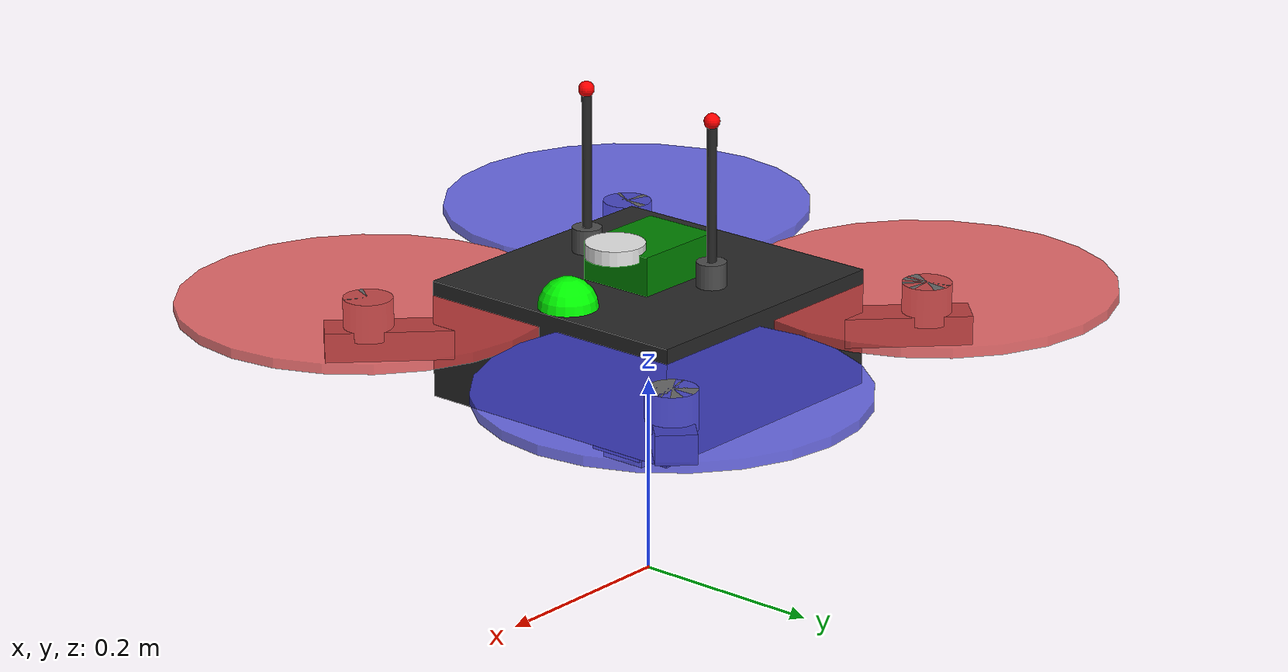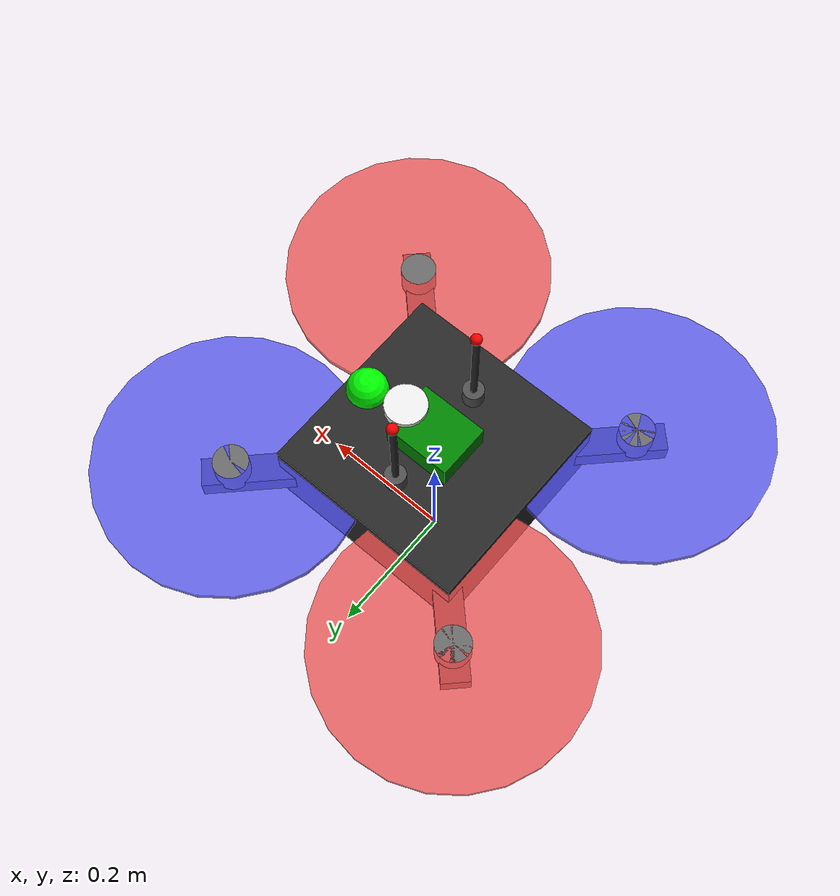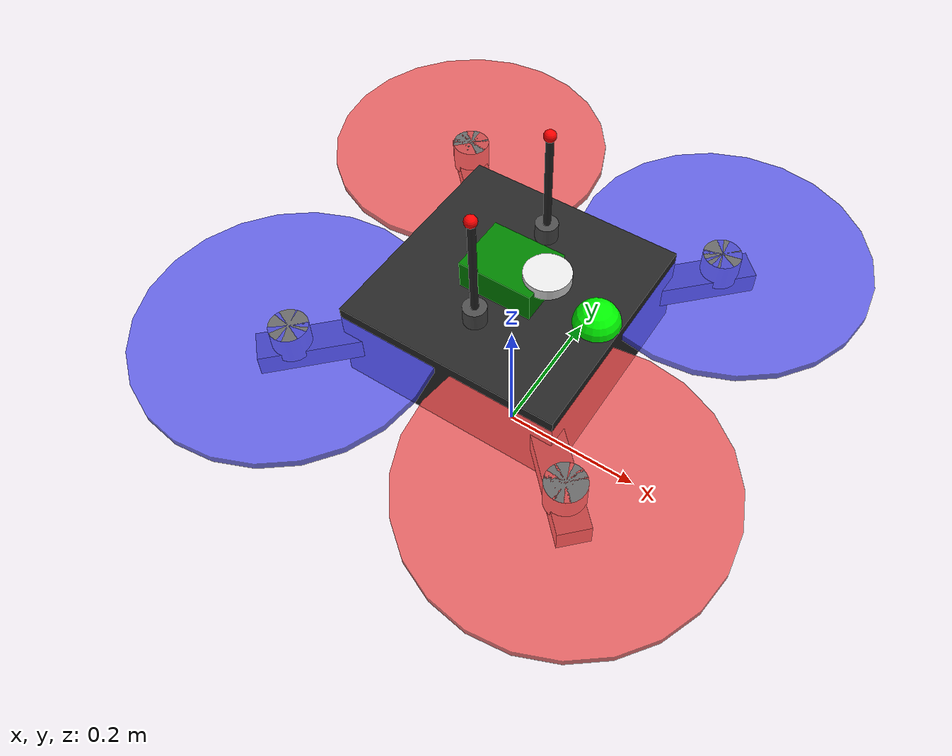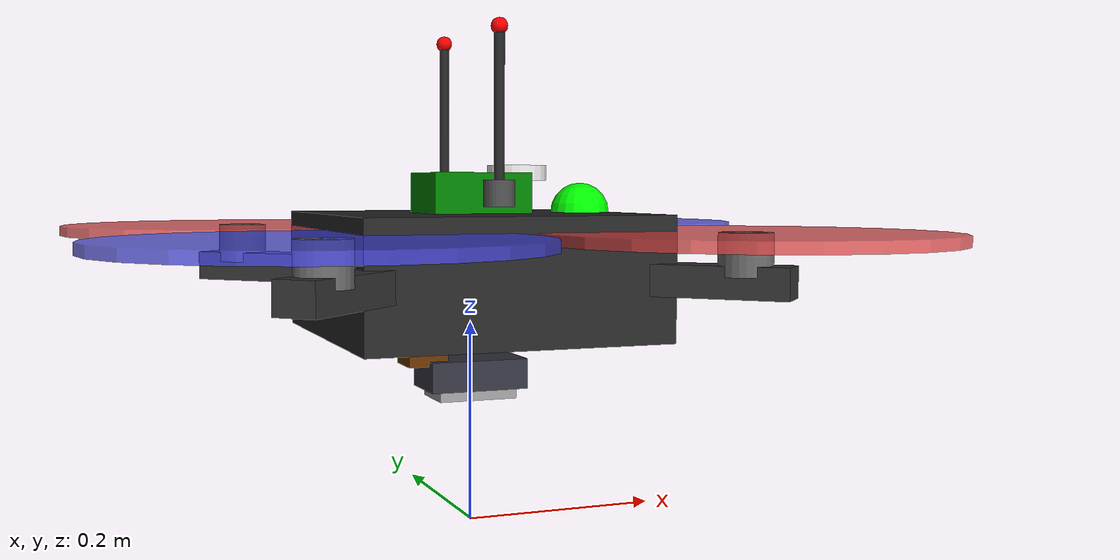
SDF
<?xml version="1.0" ?>
<sdf version="1.9">
  <model name="f11_comms_relay">
    <pose>0 0 0.25 0 0 0</pose>

    <!-- F-11 Base Link (Main Body) -->
    <link name="base_link">
      <inertial>
        <!-- Total mass: 4.5 kg base + 0.5 kg payload = 5.0 kg -->
        <mass>5.0</mass>
        <inertia>
          <ixx>0.095</ixx>
          <ixy>0</ixy>
          <ixz>0</ixz>
          <iyy>0.095</iyy>
          <iyz>0</iyz>
          <izz>0.155</izz>
        </inertia>
      </inertial>

      <!-- Main body visual - central frame -->
      <visual name="body_visual">
        <geometry>
          <box>
            <size>0.30 0.30 0.12</size>
          </box>
        </geometry>
        <material>
          <ambient>0.1 0.1 0.1 1</ambient>
          <diffuse>0.15 0.15 0.15 1</diffuse>
          <specular>0.3 0.3 0.3 1</specular>
        </material>
      </visual>

      <!-- Battery bay visual -->
      <visual name="battery_visual">
        <pose>0 0 -0.04 0 0 0</pose>
        <geometry>
          <box>
            <size>0.18 0.12 0.06</size>
          </box>
        </geometry>
        <material>
          <ambient>0.2 0.2 0.25 1</ambient>
          <diffuse>0.25 0.25 0.3 1</diffuse>
        </material>
      </visual>

      <!-- Jetson Orin NX housing visual -->
      <visual name="compute_visual">
        <pose>0 0 0.08 0 0 0</pose>
        <geometry>
          <box>
            <size>0.10 0.08 0.04</size>
          </box>
        </geometry>
        <material>
          <ambient>0.0 0.4 0.0 1</ambient>
          <diffuse>0.0 0.5 0.0 1</diffuse>
        </material>
      </visual>

      <!-- Front marker for orientation (green) -->
      <visual name="front_marker">
        <pose>0.12 0 0.06 0 0 0</pose>
        <geometry>
          <sphere>
            <radius>0.03</radius>
          </sphere>
        </geometry>
        <material>
          <ambient>0 1 0 1</ambient>
          <diffuse>0 1 0 1</diffuse>
        </material>
      </visual>

      <!-- Arms visual representation -->
      <visual name="arm_fr_visual">
        <pose>0.1375 -0.1375 0 0 0 -0.785398</pose>
        <geometry>
          <box>
            <size>0.25 0.04 0.03</size>
          </box>
        </geometry>
        <material>
          <ambient>0.15 0.15 0.15 1</ambient>
          <diffuse>0.2 0.2 0.2 1</diffuse>
        </material>
      </visual>

      <visual name="arm_fl_visual">
        <pose>0.1375 0.1375 0 0 0 0.785398</pose>
        <geometry>
          <box>
            <size>0.25 0.04 0.03</size>
          </box>
        </geometry>
        <material>
          <ambient>0.15 0.15 0.15 1</ambient>
          <diffuse>0.2 0.2 0.2 1</diffuse>
        </material>
      </visual>

      <visual name="arm_br_visual">
        <pose>-0.1375 -0.1375 0 0 0 0.785398</pose>
        <geometry>
          <box>
            <size>0.25 0.04 0.03</size>
          </box>
        </geometry>
        <material>
          <ambient>0.15 0.15 0.15 1</ambient>
          <diffuse>0.2 0.2 0.2 1</diffuse>
        </material>
      </visual>

      <visual name="arm_bl_visual">
        <pose>-0.1375 0.1375 0 0 0 -0.785398</pose>
        <geometry>
          <box>
            <size>0.25 0.04 0.03</size>
          </box>
        </geometry>
        <material>
          <ambient>0.15 0.15 0.15 1</ambient>
          <diffuse>0.2 0.2 0.2 1</diffuse>
        </material>
      </visual>

      <collision name="body_collision">
        <geometry>
          <box>
            <size>0.55 0.55 0.15</size>
          </box>
        </geometry>
      </collision>
    </link>

    <!-- Rotor 0 (Front Right - CW) -->
    <link name="rotor_0">
      <pose>0.195 -0.195 0.04 0 0 0</pose>
      <inertial>
        <mass>0.025</mass>
        <inertia>
          <ixx>1.0e-05</ixx>
          <ixy>0</ixy>
          <ixz>0</ixz>
          <iyy>5.0e-04</iyy>
          <iyz>0</iyz>
          <izz>5.0e-04</izz>
        </inertia>
      </inertial>
      <visual name="rotor_visual">
        <geometry>
          <cylinder>
            <radius>0.19</radius>
            <length>0.01</length>
          </cylinder>
        </geometry>
        <material>
          <ambient>0.8 0.2 0.2 0.8</ambient>
          <diffuse>0.9 0.3 0.3 0.8</diffuse>
        </material>
      </visual>
      <visual name="motor_visual">
        <pose>0 0 -0.015 0 0 0</pose>
        <geometry>
          <cylinder>
            <radius>0.025</radius>
            <length>0.04</length>
          </cylinder>
        </geometry>
        <material>
          <ambient>0.3 0.3 0.3 1</ambient>
          <diffuse>0.4 0.4 0.4 1</diffuse>
        </material>
      </visual>
    </link>

    <!-- Rotor 1 (Back Left - CW) -->
    <link name="rotor_1">
      <pose>-0.195 0.195 0.04 0 0 0</pose>
      <inertial>
        <mass>0.025</mass>
        <inertia>
          <ixx>1.0e-05</ixx>
          <ixy>0</ixy>
          <ixz>0</ixz>
          <iyy>5.0e-04</iyy>
          <iyz>0</iyz>
          <izz>5.0e-04</izz>
        </inertia>
      </inertial>
      <visual name="rotor_visual">
        <geometry>
          <cylinder>
            <radius>0.19</radius>
            <length>0.01</length>
          </cylinder>
        </geometry>
        <material>
          <ambient>0.8 0.2 0.2 0.8</ambient>
          <diffuse>0.9 0.3 0.3 0.8</diffuse>
        </material>
      </visual>
      <visual name="motor_visual">
        <pose>0 0 -0.015 0 0 0</pose>
        <geometry>
          <cylinder>
            <radius>0.025</radius>
            <length>0.04</length>
          </cylinder>
        </geometry>
        <material>
          <ambient>0.3 0.3 0.3 1</ambient>
          <diffuse>0.4 0.4 0.4 1</diffuse>
        </material>
      </visual>
    </link>

    <!-- Rotor 2 (Front Left - CCW) -->
    <link name="rotor_2">
      <pose>0.195 0.195 0.04 0 0 0</pose>
      <inertial>
        <mass>0.025</mass>
        <inertia>
          <ixx>1.0e-05</ixx>
          <ixy>0</ixy>
          <ixz>0</ixz>
          <iyy>5.0e-04</iyy>
          <iyz>0</iyz>
          <izz>5.0e-04</izz>
        </inertia>
      </inertial>
      <visual name="rotor_visual">
        <geometry>
          <cylinder>
            <radius>0.19</radius>
            <length>0.01</length>
          </cylinder>
        </geometry>
        <material>
          <ambient>0.2 0.2 0.8 0.8</ambient>
          <diffuse>0.3 0.3 0.9 0.8</diffuse>
        </material>
      </visual>
      <visual name="motor_visual">
        <pose>0 0 -0.015 0 0 0</pose>
        <geometry>
          <cylinder>
            <radius>0.025</radius>
            <length>0.04</length>
          </cylinder>
        </geometry>
        <material>
          <ambient>0.3 0.3 0.3 1</ambient>
          <diffuse>0.4 0.4 0.4 1</diffuse>
        </material>
      </visual>
    </link>

    <!-- Rotor 3 (Back Right - CCW) -->
    <link name="rotor_3">
      <pose>-0.195 -0.195 0.04 0 0 0</pose>
      <inertial>
        <mass>0.025</mass>
        <inertia>
          <ixx>1.0e-05</ixx>
          <ixy>0</ixy>
          <ixz>0</ixz>
          <iyy>5.0e-04</iyy>
          <iyz>0</iyz>
          <izz>5.0e-04</izz>
        </inertia>
      </inertial>
      <visual name="rotor_visual">
        <geometry>
          <cylinder>
            <radius>0.19</radius>
            <length>0.01</length>
          </cylinder>
        </geometry>
        <material>
          <ambient>0.2 0.2 0.8 0.8</ambient>
          <diffuse>0.3 0.3 0.9 0.8</diffuse>
        </material>
      </visual>
      <visual name="motor_visual">
        <pose>0 0 -0.015 0 0 0</pose>
        <geometry>
          <cylinder>
            <radius>0.025</radius>
            <length>0.04</length>
          </cylinder>
        </geometry>
        <material>
          <ambient>0.3 0.3 0.3 1</ambient>
          <diffuse>0.4 0.4 0.4 1</diffuse>
        </material>
      </visual>
    </link>

    <!-- SDR Transceiver Housing Link -->
    <link name="sdr_link">
      <pose>0 0 -0.10 0 0 0</pose>
      <inertial>
        <mass>0.25</mass>
        <inertia>
          <ixx>0.0004</ixx>
          <ixy>0</ixy>
          <ixz>0</ixz>
          <iyy>0.0004</iyy>
          <iyz>0</iyz>
          <izz>0.0003</izz>
        </inertia>
      </inertial>
      <!-- SDR housing -->
      <visual name="sdr_housing_visual">
        <geometry>
          <box>
            <size>0.10 0.06 0.03</size>
          </box>
        </geometry>
        <material>
          <ambient>0.15 0.15 0.2 1</ambient>
          <diffuse>0.2 0.2 0.25 1</diffuse>
        </material>
      </visual>
      <!-- Heat sink fins -->
      <visual name="heatsink_visual">
        <pose>0 0 -0.02 0 0 0</pose>
        <geometry>
          <box>
            <size>0.08 0.05 0.01</size>
          </box>
        </geometry>
        <material>
          <ambient>0.5 0.5 0.5 1</ambient>
          <diffuse>0.6 0.6 0.6 1</diffuse>
        </material>
      </visual>
    </link>

    <!-- Antenna 1 (Port side) Link -->
    <link name="antenna_1_link">
      <pose>0 0.08 0.08 0 0 0</pose>
      <inertial>
        <mass>0.05</mass>
        <inertia>
          <ixx>0.0002</ixx>
          <ixy>0</ixy>
          <ixz>0</ixz>
          <iyy>1e-05</iyy>
          <iyz>0</iyz>
          <izz>0.0002</izz>
        </inertia>
      </inertial>
      <!-- Antenna base -->
      <visual name="antenna_base_visual">
        <pose>0 0 0 0 0 0</pose>
        <geometry>
          <cylinder>
            <radius>0.015</radius>
            <length>0.025</length>
          </cylinder>
        </geometry>
        <material>
          <ambient>0.2 0.2 0.2 1</ambient>
          <diffuse>0.3 0.3 0.3 1</diffuse>
        </material>
      </visual>
      <!-- Antenna mast -->
      <visual name="antenna_mast_visual">
        <pose>0 0 0.08 0 0 0</pose>
        <geometry>
          <cylinder>
            <radius>0.005</radius>
            <length>0.14</length>
          </cylinder>
        </geometry>
        <material>
          <ambient>0.1 0.1 0.1 1</ambient>
          <diffuse>0.15 0.15 0.15 1</diffuse>
        </material>
      </visual>
      <!-- Antenna tip -->
      <visual name="antenna_tip_visual">
        <pose>0 0 0.155 0 0 0</pose>
        <geometry>
          <sphere>
            <radius>0.008</radius>
          </sphere>
        </geometry>
        <material>
          <ambient>0.8 0.0 0.0 1</ambient>
          <diffuse>1.0 0.0 0.0 1</diffuse>
        </material>
      </visual>
    </link>

    <!-- Antenna 2 (Starboard side) Link -->
    <link name="antenna_2_link">
      <pose>0 -0.08 0.08 0 0 0</pose>
      <inertial>
        <mass>0.05</mass>
        <inertia>
          <ixx>0.0002</ixx>
          <ixy>0</ixy>
          <ixz>0</ixz>
          <iyy>1e-05</iyy>
          <iyz>0</iyz>
          <izz>0.0002</izz>
        </inertia>
      </inertial>
      <!-- Antenna base -->
      <visual name="antenna_base_visual">
        <pose>0 0 0 0 0 0</pose>
        <geometry>
          <cylinder>
            <radius>0.015</radius>
            <length>0.025</length>
          </cylinder>
        </geometry>
        <material>
          <ambient>0.2 0.2 0.2 1</ambient>
          <diffuse>0.3 0.3 0.3 1</diffuse>
        </material>
      </visual>
      <!-- Antenna mast -->
      <visual name="antenna_mast_visual">
        <pose>0 0 0.08 0 0 0</pose>
        <geometry>
          <cylinder>
            <radius>0.005</radius>
            <length>0.14</length>
          </cylinder>
        </geometry>
        <material>
          <ambient>0.1 0.1 0.1 1</ambient>
          <diffuse>0.15 0.15 0.15 1</diffuse>
        </material>
      </visual>
      <!-- Antenna tip -->
      <visual name="antenna_tip_visual">
        <pose>0 0 0.155 0 0 0</pose>
        <geometry>
          <sphere>
            <radius>0.008</radius>
          </sphere>
        </geometry>
        <material>
          <ambient>0.8 0.0 0.0 1</ambient>
          <diffuse>1.0 0.0 0.0 1</diffuse>
        </material>
      </visual>
    </link>

    <!-- Power management module -->
    <link name="power_module_link">
      <pose>-0.05 0 -0.08 0 0 0</pose>
      <inertial>
        <mass>0.1</mass>
        <inertia>
          <ixx>5e-05</ixx>
          <ixy>0</ixy>
          <ixz>0</ixz>
          <iyy>5e-05</iyy>
          <iyz>0</iyz>
          <izz>5e-05</izz>
        </inertia>
      </inertial>
      <visual name="power_visual">
        <geometry>
          <box>
            <size>0.04 0.04 0.02</size>
          </box>
        </geometry>
        <material>
          <ambient>0.3 0.15 0.0 1</ambient>
          <diffuse>0.4 0.2 0.0 1</diffuse>
        </material>
      </visual>
    </link>

    <!-- Rotor joints -->
    <joint name="rotor_0_joint" type="revolute">
      <parent>base_link</parent>
      <child>rotor_0</child>
      <axis>
        <xyz>0 0 1</xyz>
        <limit>
          <lower>-1e16</lower>
          <upper>1e16</upper>
        </limit>
        <dynamics>
          <damping>0.004</damping>
        </dynamics>
      </axis>
    </joint>

    <joint name="rotor_1_joint" type="revolute">
      <parent>base_link</parent>
      <child>rotor_1</child>
      <axis>
        <xyz>0 0 1</xyz>
        <limit>
          <lower>-1e16</lower>
          <upper>1e16</upper>
        </limit>
        <dynamics>
          <damping>0.004</damping>
        </dynamics>
      </axis>
    </joint>

    <joint name="rotor_2_joint" type="revolute">
      <parent>base_link</parent>
      <child>rotor_2</child>
      <axis>
        <xyz>0 0 1</xyz>
        <limit>
          <lower>-1e16</lower>
          <upper>1e16</upper>
        </limit>
        <dynamics>
          <damping>0.004</damping>
        </dynamics>
      </axis>
    </joint>

    <joint name="rotor_3_joint" type="revolute">
      <parent>base_link</parent>
      <child>rotor_3</child>
      <axis>
        <xyz>0 0 1</xyz>
        <limit>
          <lower>-1e16</lower>
          <upper>1e16</upper>
        </limit>
        <dynamics>
          <damping>0.004</damping>
        </dynamics>
      </axis>
    </joint>

    <!-- Payload joints -->
    <joint name="sdr_joint" type="fixed">
      <parent>base_link</parent>
      <child>sdr_link</child>
    </joint>

    <joint name="antenna_1_joint" type="fixed">
      <parent>base_link</parent>
      <child>antenna_1_link</child>
    </joint>

    <joint name="antenna_2_joint" type="fixed">
      <parent>base_link</parent>
      <child>antenna_2_link</child>
    </joint>

    <joint name="power_module_joint" type="fixed">
      <parent>base_link</parent>
      <child>power_module_link</child>
    </joint>

    <!-- IMU Sensor Link -->
    <link name="imu_link">
      <pose>0 0 0 0 0 0</pose>
      <inertial>
        <mass>0.015</mass>
        <inertia>
          <ixx>1e-05</ixx>
          <ixy>0</ixy>
          <ixz>0</ixz>
          <iyy>1e-05</iyy>
          <iyz>0</iyz>
          <izz>1e-05</izz>
        </inertia>
      </inertial>
      <sensor name="imu_sensor" type="imu">
        <always_on>1</always_on>
        <update_rate>250</update_rate>
        <imu>
          <angular_velocity>
            <x><noise type="gaussian"><mean>0</mean><stddev>0.009</stddev></noise></x>
            <y><noise type="gaussian"><mean>0</mean><stddev>0.009</stddev></noise></y>
            <z><noise type="gaussian"><mean>0</mean><stddev>0.009</stddev></noise></z>
          </angular_velocity>
          <linear_acceleration>
            <x><noise type="gaussian"><mean>0</mean><stddev>0.017</stddev></noise></x>
            <y><noise type="gaussian"><mean>0</mean><stddev>0.017</stddev></noise></y>
            <z><noise type="gaussian"><mean>0</mean><stddev>0.017</stddev></noise></z>
          </linear_acceleration>
        </imu>
      </sensor>
    </link>

    <joint name="imu_joint" type="fixed">
      <parent>base_link</parent>
      <child>imu_link</child>
    </joint>

    <!-- GPS Link -->
    <link name="gps_link">
      <pose>0.05 0 0.10 0 0 0</pose>
      <inertial>
        <mass>0.05</mass>
        <inertia>
          <ixx>1e-05</ixx>
          <ixy>0</ixy>
          <ixz>0</ixz>
          <iyy>1e-05</iyy>
          <iyz>0</iyz>
          <izz>1e-05</izz>
        </inertia>
      </inertial>
      <visual name="gps_visual">
        <geometry>
          <cylinder>
            <radius>0.03</radius>
            <length>0.015</length>
          </cylinder>
        </geometry>
        <material>
          <ambient>0.8 0.8 0.8 1</ambient>
          <diffuse>0.9 0.9 0.9 1</diffuse>
        </material>
      </visual>
      <sensor name="gps_sensor" type="navsat">
        <always_on>1</always_on>
        <update_rate>10</update_rate>
      </sensor>
    </link>

    <joint name="gps_joint" type="fixed">
      <parent>base_link</parent>
      <child>gps_link</child>
    </joint>

    <!-- ArduPilot Plugin -->
    <plugin filename="ArduPilotPlugin" name="ArduPilotPlugin">
      <fdm_addr>127.0.0.1</fdm_addr>
      <fdm_port_in>9002</fdm_port_in>
      <fdm_port_out>9003</fdm_port_out>

      <modelXYZToAirplaneXForwardZDown>0 0 0 3.141593 0 0</modelXYZToAirplaneXForwardZDown>
      <gazeboXYZToNED>0 0 0 3.141593 0 0</gazeboXYZToNED>
      <imuName>imu_link::imu_sensor</imuName>

      <!-- Motor 0: Front Right (CW) -->
      <control channel="0">
        <jointName>rotor_0_joint</jointName>
        <useForce>1</useForce>
        <multiplier>1260</multiplier>
        <offset>-0.5</offset>
        <servo_min>1000</servo_min>
        <servo_max>2000</servo_max>
        <type>VELOCITY</type>
        <p_gain>0.25</p_gain>
        <i_gain>0</i_gain>
        <d_gain>0</d_gain>
        <i_max>0</i_max>
        <i_min>0</i_min>
        <cmd_max>3.0</cmd_max>
        <cmd_min>-3.0</cmd_min>
      </control>

      <!-- Motor 1: Back Left (CW) -->
      <control channel="1">
        <jointName>rotor_1_joint</jointName>
        <useForce>1</useForce>
        <multiplier>1260</multiplier>
        <offset>-0.5</offset>
        <servo_min>1000</servo_min>
        <servo_max>2000</servo_max>
        <type>VELOCITY</type>
        <p_gain>0.25</p_gain>
        <i_gain>0</i_gain>
        <d_gain>0</d_gain>
        <i_max>0</i_max>
        <i_min>0</i_min>
        <cmd_max>3.0</cmd_max>
        <cmd_min>-3.0</cmd_min>
      </control>

      <!-- Motor 2: Front Left (CCW) -->
      <control channel="2">
        <jointName>rotor_2_joint</jointName>
        <useForce>1</useForce>
        <multiplier>1260</multiplier>
        <offset>-0.5</offset>
        <servo_min>1000</servo_min>
        <servo_max>2000</servo_max>
        <type>VELOCITY</type>
        <p_gain>0.25</p_gain>
        <i_gain>0</i_gain>
        <d_gain>0</d_gain>
        <i_max>0</i_max>
        <i_min>0</i_min>
        <cmd_max>3.0</cmd_max>
        <cmd_min>-3.0</cmd_min>
      </control>

      <!-- Motor 3: Back Right (CCW) -->
      <control channel="3">
        <jointName>rotor_3_joint</jointName>
        <useForce>1</useForce>
        <multiplier>1260</multiplier>
        <offset>-0.5</offset>
        <servo_min>1000</servo_min>
        <servo_max>2000</servo_max>
        <type>VELOCITY</type>
        <p_gain>0.25</p_gain>
        <i_gain>0</i_gain>
        <d_gain>0</d_gain>
        <i_max>0</i_max>
        <i_min>0</i_min>
        <cmd_max>3.0</cmd_max>
        <cmd_min>-3.0</cmd_min>
      </control>
    </plugin>

  </model>
</sdf>
